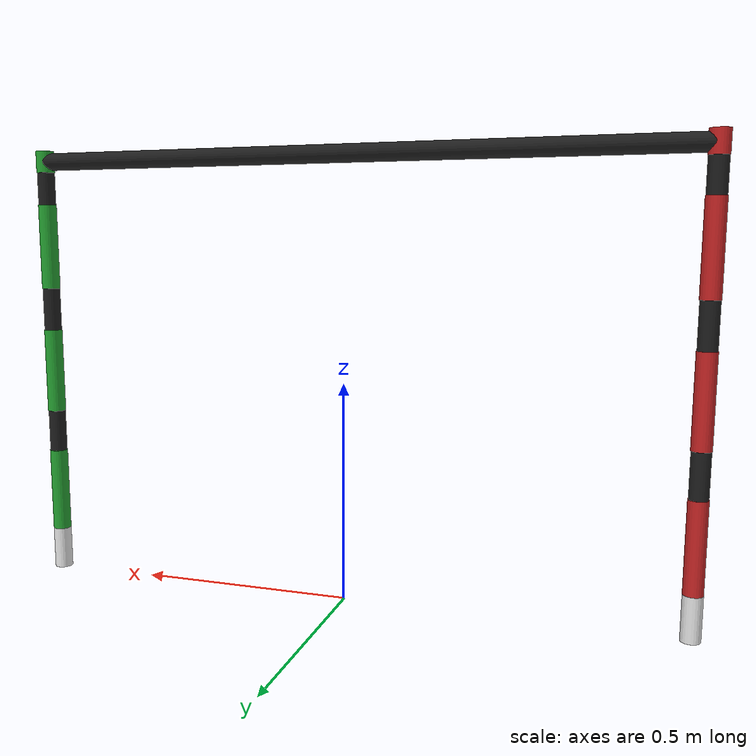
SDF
<?xml version='1.0'?>
<sdf version='1.7'>
  <model name='gate'>
    <link name='link_0'>
      <inertial>
        <mass>1</mass>
        <inertia>
          <ixx>0.145833</ixx>
          <ixy>0</ixy>
          <ixz>0</ixz>
          <iyy>0.145833</iyy>
          <iyz>0</iyz>
          <izz>0.125</izz>
        </inertia>
        <pose>0 0 0 0 -0 0</pose>
      </inertial>
      <pose>-0.75 0 0.5 0 -0 0</pose>
      <gravity>1</gravity>
      <self_collide>0</self_collide>
      <kinematic>0</kinematic>
      <enable_wind>0</enable_wind>
      <visual name='visual'>
        <pose>0 0 0 0 -0 0</pose>
        <geometry>
          <cylinder>
            <radius>0.02</radius>
            <length>1.0</length>
          </cylinder>
        </geometry>
        <material>
          <lighting>1</lighting>
          <script>
            <uri>file://media/materials/scripts/gazebo.material</uri>
            <name>Gazebo/Black</name>
          </script>
          <shader type='pixel'>
            <normal_map>__default__</normal_map>
          </shader>
          <ambient>0.5 0.1 0.1 1</ambient>
          <diffuse>1 0.2 0.2 1</diffuse>
          <specular>0.01 0.01 0.01 1</specular>
          <emissive>0 0 0 1</emissive>
        </material>
        <transparency>0</transparency>
        <cast_shadows>1</cast_shadows>
      </visual>
      <visual name='ModelPreview_4-link_0-visual_0'>
        <pose>0 0 -0.45 0 -0 0</pose>
        <geometry>
          <cylinder>
            <radius>0.021</radius>
            <length>0.1</length>
          </cylinder>
        </geometry>
        <material>
          <lighting>1</lighting>
          <script>
            <uri>file://media/materials/scripts/gazebo.material</uri>
            <name>Gazebo/White</name>
          </script>
          <shader type='pixel'>
            <normal_map>__default__</normal_map>
          </shader>
          <ambient>0.05 0.05 0.05 1</ambient>
          <diffuse>0.1 0.1 0.1 1</diffuse>
          <specular>0.01 0.01 0.01 1</specular>
          <emissive>0 0 0 1</emissive>
        </material>
        <transparency>0</transparency>
        <cast_shadows>1</cast_shadows>
      </visual>
      <visual name='ModelPreview_4-link_0-visual_1'>
        <pose>0 0 -0.3 0 -0 0</pose>
        <geometry>
          <cylinder>
            <radius>0.021</radius>
            <length>0.2</length>
          </cylinder>
        </geometry>
        <material>
          <lighting>1</lighting>
          <script>
            <uri>file://media/materials/scripts/gazebo.material</uri>
            <name>Gazebo/Red</name>
          </script>
          <shader type='pixel'>
            <normal_map>__default__</normal_map>
          </shader>
          <ambient>0.05 0.05 0.05 1</ambient>
          <diffuse>0.1 0.1 0.1 1</diffuse>
          <specular>0.01 0.01 0.01 1</specular>
          <emissive>0 0 0 1</emissive>
        </material>
        <transparency>0</transparency>
        <cast_shadows>1</cast_shadows>
      </visual>
      <visual name='ModelPreview_1-link_0-visual_2'>
        <pose>0 0 0 0 -0 0</pose>
        <geometry>
          <cylinder>
            <radius>0.021</radius>
            <length>0.2</length>
          </cylinder>
        </geometry>
        <material>
          <lighting>1</lighting>
          <script>
            <uri>file://media/materials/scripts/gazebo.material</uri>
            <name>Gazebo/Red</name>
          </script>
          <shader type='pixel'>
            <normal_map>__default__</normal_map>
          </shader>
          <ambient>0.05 0.05 0.05 1</ambient>
          <diffuse>0.1 0.1 0.1 1</diffuse>
          <specular>0.01 0.01 0.01 1</specular>
          <emissive>0 0 0 1</emissive>
        </material>
        <transparency>0</transparency>
        <cast_shadows>1</cast_shadows>
      </visual>
      <visual name='ModelPreview_4-link_0-visual_3'>
        <pose>0 0 0.3 0 -0 0</pose>
        <geometry>
          <cylinder>
            <radius>0.021</radius>
            <length>0.2</length>
          </cylinder>
        </geometry>
        <material>
          <lighting>1</lighting>
          <script>
            <uri>file://media/materials/scripts/gazebo.material</uri>
            <name>Gazebo/Red</name>
          </script>
          <shader type='pixel'>
            <normal_map>__default__</normal_map>
          </shader>
          <ambient>0.05 0.05 0.05 1</ambient>
          <diffuse>0.1 0.1 0.1 1</diffuse>
          <specular>0.01 0.01 0.01 1</specular>
          <emissive>0 0 0 1</emissive>
        </material>
        <transparency>0</transparency>
        <cast_shadows>1</cast_shadows>
      </visual>
      <visual name='ModelPreview_4-link_0-visual_4'>
        <pose>0 0 0.5 0 -0 0</pose>
        <geometry>
          <cylinder>
            <radius>0.021</radius>
            <length>0.05</length>
          </cylinder>
        </geometry>
        <material>
          <lighting>1</lighting>
          <script>
            <uri>file://media/materials/scripts/gazebo.material</uri>
            <name>Gazebo/Red</name>
          </script>
          <shader type='pixel'>
            <normal_map>__default__</normal_map>
          </shader>
          <ambient>0.05 0.05 0.05 1</ambient>
          <diffuse>0.1 0.1 0.1 1</diffuse>
          <specular>0.01 0.01 0.01 1</specular>
          <emissive>0 0 0 1</emissive>
        </material>
        <transparency>0</transparency>
        <cast_shadows>1</cast_shadows>
      </visual>
      <collision name='collision'>
        <laser_retro>0</laser_retro>
        <max_contacts>10</max_contacts>
        <pose>0 0 0 0 -0 0</pose>
        <geometry>
          <cylinder>
            <radius>0.02</radius>
            <length>1.0</length>
          </cylinder>
        </geometry>
        <surface>
          <friction>
            <ode>
              <mu>1</mu>
              <mu2>1</mu2>
              <fdir1>0 0 0</fdir1>
              <slip1>0</slip1>
              <slip2>0</slip2>
            </ode>
            <torsional>
              <coefficient>1</coefficient>
              <patch_radius>0</patch_radius>
              <surface_radius>0</surface_radius>
              <use_patch_radius>1</use_patch_radius>
              <ode>
                <slip>0</slip>
              </ode>
            </torsional>
          </friction>
          <bounce>
            <restitution_coefficient>0</restitution_coefficient>
            <threshold>1e+06</threshold>
          </bounce>
          <contact>
            <collide_without_contact>0</collide_without_contact>
            <collide_without_contact_bitmask>1</collide_without_contact_bitmask>
            <collide_bitmask>1</collide_bitmask>
            <ode>
              <soft_cfm>0</soft_cfm>
              <soft_erp>0.2</soft_erp>
              <kp>1e+13</kp>
              <kd>1</kd>
              <max_vel>0.01</max_vel>
              <min_depth>0</min_depth>
            </ode>
            <bullet>
              <split_impulse>1</split_impulse>
              <split_impulse_penetration_threshold>-0.01</split_impulse_penetration_threshold>
              <soft_cfm>0</soft_cfm>
              <soft_erp>0.2</soft_erp>
              <kp>1e+13</kp>
              <kd>1</kd>
            </bullet>
          </contact>
        </surface>
      </collision>
    </link>
    <link name='link_0_clone'>
      <inertial>
        <mass>1</mass>
        <inertia>
          <ixx>0.145833</ixx>
          <ixy>0</ixy>
          <ixz>0</ixz>
          <iyy>0.145833</iyy>
          <iyz>0</iyz>
          <izz>0.125</izz>
        </inertia>
        <pose>0 0 0 0 -0 0</pose>
      </inertial>
      <pose>0.75 0 0.5 0 -0 0</pose>
      <gravity>1</gravity>
      <self_collide>0</self_collide>
      <kinematic>0</kinematic>
      <enable_wind>0</enable_wind>
      <visual name='visual'>
        <pose>0 0 0 0 -0 0</pose>
        <geometry>
          <cylinder>
            <radius>0.02</radius>
            <length>1.0</length>
          </cylinder>
        </geometry>
        <material>
          <lighting>1</lighting>
          <script>
            <uri>file://media/materials/scripts/gazebo.material</uri>
            <name>Gazebo/Black</name>
          </script>
          <shader type='pixel'>
            <normal_map>__default__</normal_map>
          </shader>
          <ambient>0.1 0.5 0.1 1</ambient>
          <diffuse>0.2 1 0.2 1</diffuse>
          <specular>0.01 0.01 0.01 1</specular>
          <emissive>0 0 0 1</emissive>
        </material>
        <transparency>0</transparency>
        <cast_shadows>1</cast_shadows>
      </visual>
      <visual name='ModelPreview_4-link_0_clone-visual_0'>
        <pose>0 0 -0.45 0 -0 0</pose>
        <geometry>
          <cylinder>
            <radius>0.021</radius>
            <length>0.1</length>
          </cylinder>
        </geometry>
        <material>
          <lighting>1</lighting>
          <script>
            <uri>file://media/materials/scripts/gazebo.material</uri>
            <name>Gazebo/White</name>
          </script>
          <shader type='pixel'>
            <normal_map>__default__</normal_map>
          </shader>
          <ambient>0.05 0.05 0.05 1</ambient>
          <diffuse>0.1 0.1 0.1 1</diffuse>
          <specular>0.01 0.01 0.01 1</specular>
          <emissive>0 0 0 1</emissive>
        </material>
        <transparency>0</transparency>
        <cast_shadows>1</cast_shadows>
      </visual>
      <visual name='ModelPreview_4-link_0_clone-visual_1'>
        <pose>0 0 -0.3 0 -0 0</pose>
        <geometry>
          <cylinder>
            <radius>0.021</radius>
            <length>0.2</length>
          </cylinder>
        </geometry>
        <material>
          <lighting>1</lighting>
          <script>
            <uri>file://media/materials/scripts/gazebo.material</uri>
            <name>Gazebo/Green</name>
          </script>
          <shader type='pixel'>
            <normal_map>__default__</normal_map>
          </shader>
          <ambient>0.05 0.05 0.05 1</ambient>
          <diffuse>0.1 0.1 0.1 1</diffuse>
          <specular>0.01 0.01 0.01 1</specular>
          <emissive>0 0 0 1</emissive>
        </material>
        <transparency>0</transparency>
        <cast_shadows>1</cast_shadows>
      </visual>
      <visual name='ModelPreview_4-link_0_clone-visual_2'>
        <pose>0 0 0 0 -0 0</pose>
        <geometry>
          <cylinder>
            <radius>0.021</radius>
            <length>0.2</length>
          </cylinder>
        </geometry>
        <material>
          <lighting>1</lighting>
          <script>
            <uri>file://media/materials/scripts/gazebo.material</uri>
            <name>Gazebo/Green</name>
          </script>
          <shader type='pixel'>
            <normal_map>__default__</normal_map>
          </shader>
          <ambient>0.05 0.05 0.05 1</ambient>
          <diffuse>0.1 0.1 0.1 1</diffuse>
          <specular>0.01 0.01 0.01 1</specular>
          <emissive>0 0 0 1</emissive>
        </material>
        <transparency>0</transparency>
        <cast_shadows>1</cast_shadows>
      </visual>
      <visual name='ModelPreview_4-link_0_clone-visual_3'>
        <pose>0 0 0.3 0 -0 0</pose>
        <geometry>
          <cylinder>
            <radius>0.021</radius>
            <length>0.2</length>
          </cylinder>
        </geometry>
        <material>
          <lighting>1</lighting>
          <script>
            <uri>file://media/materials/scripts/gazebo.material</uri>
            <name>Gazebo/Green</name>
          </script>
          <shader type='pixel'>
            <normal_map>__default__</normal_map>
          </shader>
          <ambient>0.05 0.05 0.05 1</ambient>
          <diffuse>0.1 0.1 0.1 1</diffuse>
          <specular>0.01 0.01 0.01 1</specular>
          <emissive>0 0 0 1</emissive>
        </material>
        <transparency>0</transparency>
        <cast_shadows>1</cast_shadows>
      </visual>
      <visual name='ModelPreview_4-link_0_clone-visual_4'>
        <pose>0 0 0.5 0 -0 0</pose>
        <geometry>
          <cylinder>
            <radius>0.021</radius>
            <length>0.05</length>
          </cylinder>
        </geometry>
        <material>
          <lighting>1</lighting>
          <script>
            <uri>file://media/materials/scripts/gazebo.material</uri>
            <name>Gazebo/Green</name>
          </script>
          <shader type='pixel'>
            <normal_map>__default__</normal_map>
          </shader>
          <ambient>0.05 0.05 0.05 1</ambient>
          <diffuse>0.1 0.1 0.1 1</diffuse>
          <specular>0.01 0.01 0.01 1</specular>
          <emissive>0 0 0 1</emissive>
        </material>
        <transparency>0</transparency>
        <cast_shadows>1</cast_shadows>
      </visual>
      <collision name='collision'>
        <laser_retro>0</laser_retro>
        <max_contacts>10</max_contacts>
        <pose>0 0 0 0 -0 0</pose>
        <geometry>
          <cylinder>
            <radius>0.02</radius>
            <length>1.5</length>
          </cylinder>
        </geometry>
        <surface>
          <friction>
            <ode>
              <mu>1</mu>
              <mu2>1</mu2>
              <fdir1>0 0 0</fdir1>
              <slip1>0</slip1>
              <slip2>0</slip2>
            </ode>
            <torsional>
              <coefficient>1</coefficient>
              <patch_radius>0</patch_radius>
              <surface_radius>0</surface_radius>
              <use_patch_radius>1</use_patch_radius>
              <ode>
                <slip>0</slip>
              </ode>
            </torsional>
          </friction>
          <bounce>
            <restitution_coefficient>0</restitution_coefficient>
            <threshold>1e+06</threshold>
          </bounce>
          <contact>
            <collide_without_contact>0</collide_without_contact>
            <collide_without_contact_bitmask>1</collide_without_contact_bitmask>
            <collide_bitmask>1</collide_bitmask>
            <ode>
              <soft_cfm>0</soft_cfm>
              <soft_erp>0.2</soft_erp>
              <kp>1e+13</kp>
              <kd>1</kd>
              <max_vel>0.01</max_vel>
              <min_depth>0</min_depth>
            </ode>
            <bullet>
              <split_impulse>1</split_impulse>
              <split_impulse_penetration_threshold>-0.01</split_impulse_penetration_threshold>
              <soft_cfm>0</soft_cfm>
              <soft_erp>0.2</soft_erp>
              <kp>1e+13</kp>
              <kd>1</kd>
            </bullet>
          </contact>
        </surface>
      </collision>
    </link>
    <link name='link_0_clone_0'>
      <inertial>
        <mass>1</mass>
        <inertia>
          <ixx>0.145833</ixx>
          <ixy>0</ixy>
          <ixz>0</ixz>
          <iyy>0.145833</iyy>
          <iyz>0</iyz>
          <izz>0.125</izz>
        </inertia>
        <pose>0 0 0 0 -0 0</pose>
      </inertial>
      <pose>0 0 1.0 3.14159 -1.57079 3.14159</pose>
      <gravity>1</gravity>
      <self_collide>0</self_collide>
      <kinematic>0</kinematic>
      <enable_wind>0</enable_wind>
      <visual name='visual'>
        <pose>0 0 0 0 -0 0</pose>
        <geometry>
          <cylinder>
            <radius>0.02</radius>
            <length>1.5</length>
          </cylinder>
        </geometry>
        <material>
          <lighting>1</lighting>
          <script>
            <uri>file://media/materials/scripts/gazebo.material</uri>
            <name>Gazebo/Black</name>
          </script>
          <shader type='pixel'>
            <normal_map>__default__</normal_map>
          </shader>
          <ambient>0.05 0.05 0.05 1</ambient>
          <diffuse>0.1 0.1 0.1 1</diffuse>
          <specular>0.01 0.01 0.01 1</specular>
          <emissive>0 0 0 1</emissive>
        </material>
        <transparency>0</transparency>
        <cast_shadows>1</cast_shadows>
      </visual>
      <collision name='collision'>
        <laser_retro>0</laser_retro>
        <max_contacts>10</max_contacts>
        <pose>0 0 0 0 -0 0</pose>
        <geometry>
          <cylinder>
            <radius>0.02</radius>
            <length>1.5</length>
          </cylinder>
        </geometry>
        <surface>
          <friction>
            <ode>
              <mu>1</mu>
              <mu2>1</mu2>
              <fdir1>0 0 0</fdir1>
              <slip1>0</slip1>
              <slip2>0</slip2>
            </ode>
            <torsional>
              <coefficient>1</coefficient>
              <patch_radius>0</patch_radius>
              <surface_radius>0</surface_radius>
              <use_patch_radius>1</use_patch_radius>
              <ode>
                <slip>0</slip>
              </ode>
            </torsional>
          </friction>
          <bounce>
            <restitution_coefficient>0</restitution_coefficient>
            <threshold>1e+06</threshold>
          </bounce>
          <contact>
            <collide_without_contact>0</collide_without_contact>
            <collide_without_contact_bitmask>1</collide_without_contact_bitmask>
            <collide_bitmask>1</collide_bitmask>
            <ode>
              <soft_cfm>0</soft_cfm>
              <soft_erp>0.2</soft_erp>
              <kp>1e+13</kp>
              <kd>1</kd>
              <max_vel>0.01</max_vel>
              <min_depth>0</min_depth>
            </ode>
            <bullet>
              <split_impulse>1</split_impulse>
              <split_impulse_penetration_threshold>-0.01</split_impulse_penetration_threshold>
              <soft_cfm>0</soft_cfm>
              <soft_erp>0.2</soft_erp>
              <kp>1e+13</kp>
              <kd>1</kd>
            </bullet>
          </contact>
        </surface>
      </collision>
    </link>
    <joint name='link_0_clone_0_JOINT_0' type='fixed'>
      <parent>link_0_clone_0</parent>
      <child>link_0</child>
      <pose>0 0 0 0 -0 0</pose>
      <physics>
        <ode>
          <limit>
            <cfm>0</cfm>
            <erp>0.2</erp>
          </limit>
          <suspension>
            <cfm>0</cfm>
            <erp>0.2</erp>
          </suspension>
        </ode>
      </physics>
    </joint>
    <joint name='link_0_clone_0_JOINT_1' type='fixed'>
      <parent>link_0_clone_0</parent>
      <child>link_0_clone</child>
      <pose>0 0 0 0 -0 0</pose>
      <physics>
        <ode>
          <limit>
            <cfm>0</cfm>
            <erp>0.2</erp>
          </limit>
          <suspension>
            <cfm>0</cfm>
            <erp>0.2</erp>
          </suspension>
        </ode>
      </physics>
    </joint>
    <static>1</static>
    <allow_auto_disable>1</allow_auto_disable>
  </model>
</sdf>
